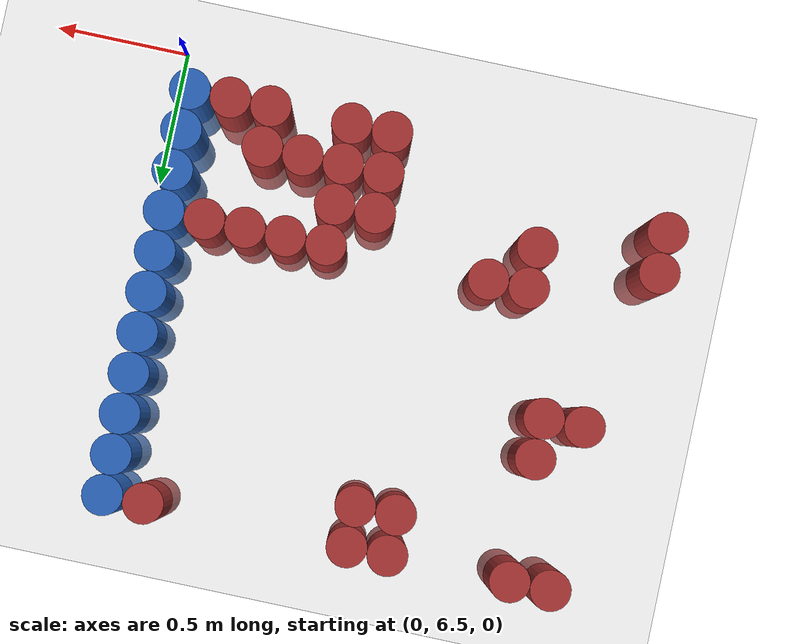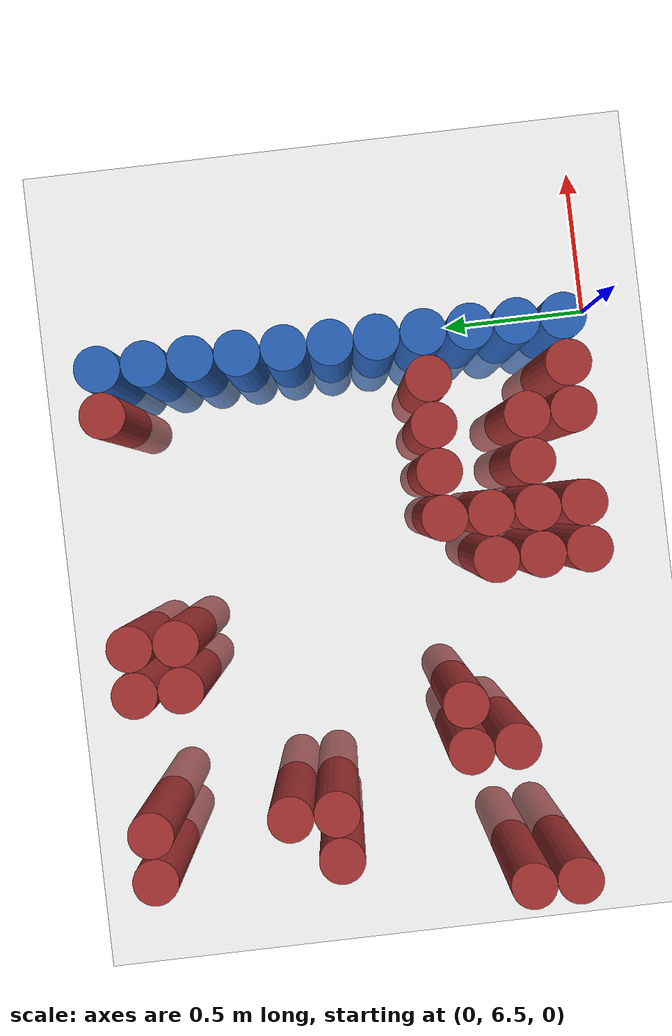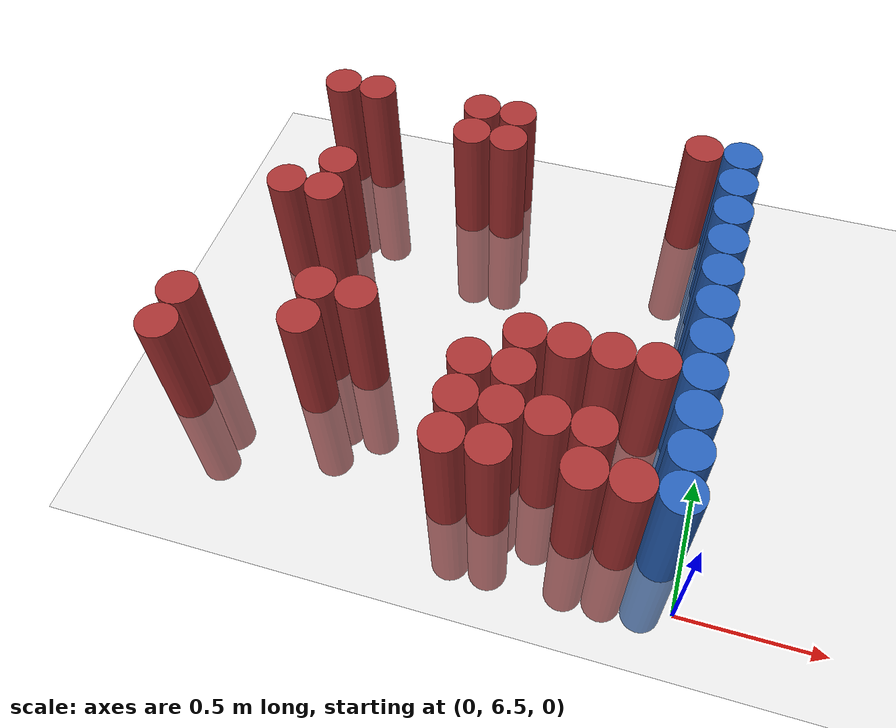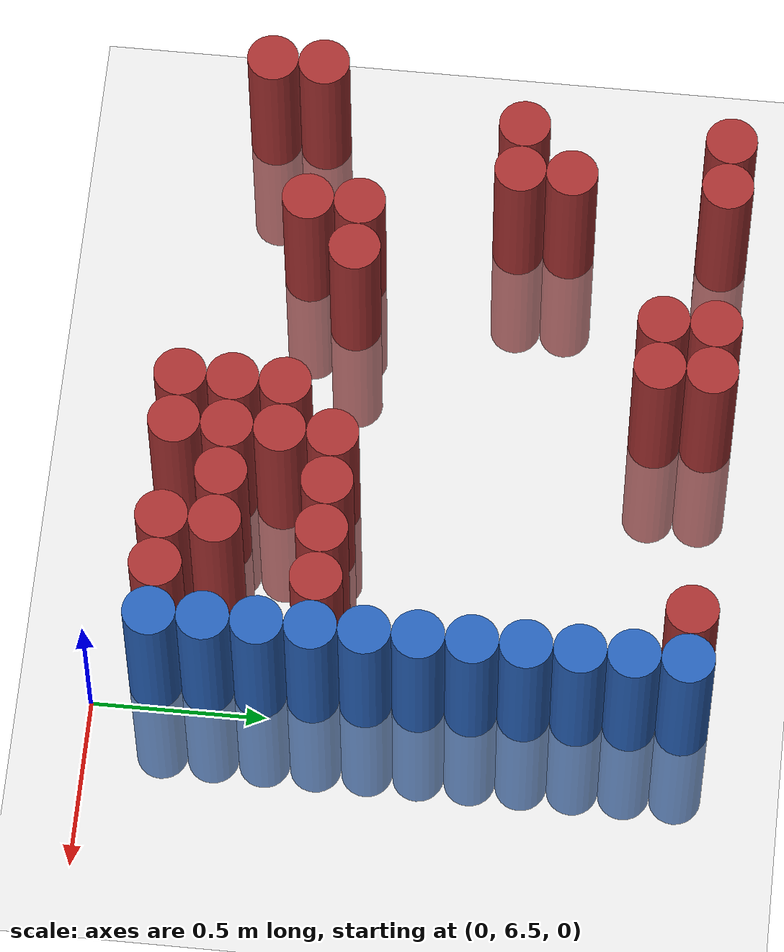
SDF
<sdf version="1.6">
 <world name="default">
  <model name="ground_plane">
   <static>1</static>
   <link name="link">
    <collision name="collision">
     <geometry><plane><normal>0 0 1</normal><size>100 100</size></plane></geometry>
     <surface><friction><ode><mu>100</mu><mu2>50</mu2></ode></friction></surface>
    </collision>
    <visual name="visual">
     <cast_shadows>0</cast_shadows>
     <geometry><plane><normal>0 0 1</normal><size>100 100</size></plane></geometry>
     <material>
      <script><uri>file://media/materials/scripts/gazebo.material</uri><name>Gazebo/Grey</name></script>
     </material>
    </visual>
   </link>
  </model>
  <model name="unit_cylinder_209">
   <static>1</static>
   <pose>-1.875000 6.825000 0.000000 0.000000 0.000000 0.000000</pose>
   <link name="link">
    <inertial>
     <mass>1</mass>
     <inertia><ixx>0.145833</ixx><ixy>0</ixy><ixz>0</ixz><iyy>0.145833</iyy><iyz>0</iyz><izz>0.125</izz></inertia>
    </inertial>
    <collision name="collision">
     <geometry><cylinder><radius>0.075000</radius><length>1</length></cylinder></geometry>
    </collision>
    <visual name="visual">
     <geometry><cylinder><radius>0.075000</radius><length>1</length></cylinder></geometry>
     <material>
      <ambient>0.648000 0.192000 0.192000 1</ambient>
      <diffuse>0.648000 0.192000 0.192000 1</diffuse>
     </material>
     <material>
      <script><name>Gazebo/Grey</name><uri>file://media/materials/scripts/gazebo.material</uri></script>
     </material>
    </visual>
    <sensor name="sensor_contact" type="contact"><contact><collision>collision</collision></contact></sensor>
   </link>
   <plugin filename="gz-sim-touchplugin-system" name="gz::sim::systems::TouchPlugin">
    <target>robot</target>
    <namespace>robot</namespace>
    <time>0.001</time>
    <enabled>true</enabled>
   </plugin>
  </model>
  <model name="unit_cylinder_210">
   <static>1</static>
   <pose>-1.875000 6.975000 0.000000 0.000000 0.000000 0.000000</pose>
   <link name="link">
    <inertial>
     <mass>1</mass>
     <inertia><ixx>0.145833</ixx><ixy>0</ixy><ixz>0</ixz><iyy>0.145833</iyy><iyz>0</iyz><izz>0.125</izz></inertia>
    </inertial>
    <collision name="collision">
     <geometry><cylinder><radius>0.075000</radius><length>1</length></cylinder></geometry>
    </collision>
    <visual name="visual">
     <geometry><cylinder><radius>0.075000</radius><length>1</length></cylinder></geometry>
     <material>
      <ambient>0.648000 0.192000 0.192000 1</ambient>
      <diffuse>0.648000 0.192000 0.192000 1</diffuse>
     </material>
     <material>
      <script><name>Gazebo/Grey</name><uri>file://media/materials/scripts/gazebo.material</uri></script>
     </material>
    </visual>
    <sensor name="sensor_contact" type="contact"><contact><collision>collision</collision></contact></sensor>
   </link>
   <plugin filename="gz-sim-touchplugin-system" name="gz::sim::systems::TouchPlugin">
    <target>robot</target>
    <namespace>robot</namespace>
    <time>0.001</time>
    <enabled>true</enabled>
   </plugin>
  </model>
  <model name="unit_cylinder_215">
   <static>1</static>
   <pose>-1.725000 7.575000 0.000000 0.000000 0.000000 0.000000</pose>
   <link name="link">
    <inertial>
     <mass>1</mass>
     <inertia><ixx>0.145833</ixx><ixy>0</ixy><ixz>0</ixz><iyy>0.145833</iyy><iyz>0</iyz><izz>0.125</izz></inertia>
    </inertial>
    <collision name="collision">
     <geometry><cylinder><radius>0.075000</radius><length>1</length></cylinder></geometry>
    </collision>
    <visual name="visual">
     <geometry><cylinder><radius>0.075000</radius><length>1</length></cylinder></geometry>
     <material>
      <ambient>0.648000 0.192000 0.192000 1</ambient>
      <diffuse>0.648000 0.192000 0.192000 1</diffuse>
     </material>
     <material>
      <script><name>Gazebo/Grey</name><uri>file://media/materials/scripts/gazebo.material</uri></script>
     </material>
    </visual>
    <sensor name="sensor_contact" type="contact"><contact><collision>collision</collision></contact></sensor>
   </link>
   <plugin filename="gz-sim-touchplugin-system" name="gz::sim::systems::TouchPlugin">
    <target>robot</target>
    <namespace>robot</namespace>
    <time>0.001</time>
    <enabled>true</enabled>
   </plugin>
  </model>
  <model name="unit_cylinder_216">
   <static>1</static>
   <pose>-1.725000 8.175000 0.000000 0.000000 0.000000 0.000000</pose>
   <link name="link">
    <inertial>
     <mass>1</mass>
     <inertia><ixx>0.145833</ixx><ixy>0</ixy><ixz>0</ixz><iyy>0.145833</iyy><iyz>0</iyz><izz>0.125</izz></inertia>
    </inertial>
    <collision name="collision">
     <geometry><cylinder><radius>0.075000</radius><length>1</length></cylinder></geometry>
    </collision>
    <visual name="visual">
     <geometry><cylinder><radius>0.075000</radius><length>1</length></cylinder></geometry>
     <material>
      <ambient>0.648000 0.192000 0.192000 1</ambient>
      <diffuse>0.648000 0.192000 0.192000 1</diffuse>
     </material>
     <material>
      <script><name>Gazebo/Grey</name><uri>file://media/materials/scripts/gazebo.material</uri></script>
     </material>
    </visual>
    <sensor name="sensor_contact" type="contact"><contact><collision>collision</collision></contact></sensor>
   </link>
   <plugin filename="gz-sim-touchplugin-system" name="gz::sim::systems::TouchPlugin">
    <target>robot</target>
    <namespace>robot</namespace>
    <time>0.001</time>
    <enabled>true</enabled>
   </plugin>
  </model>
  <model name="unit_cylinder_221">
   <static>1</static>
   <pose>-1.575000 7.575000 0.000000 0.000000 0.000000 0.000000</pose>
   <link name="link">
    <inertial>
     <mass>1</mass>
     <inertia><ixx>0.145833</ixx><ixy>0</ixy><ixz>0</ixz><iyy>0.145833</iyy><iyz>0</iyz><izz>0.125</izz></inertia>
    </inertial>
    <collision name="collision">
     <geometry><cylinder><radius>0.075000</radius><length>1</length></cylinder></geometry>
    </collision>
    <visual name="visual">
     <geometry><cylinder><radius>0.075000</radius><length>1</length></cylinder></geometry>
     <material>
      <ambient>0.648000 0.192000 0.192000 1</ambient>
      <diffuse>0.648000 0.192000 0.192000 1</diffuse>
     </material>
     <material>
      <script><name>Gazebo/Grey</name><uri>file://media/materials/scripts/gazebo.material</uri></script>
     </material>
    </visual>
    <sensor name="sensor_contact" type="contact"><contact><collision>collision</collision></contact></sensor>
   </link>
   <plugin filename="gz-sim-touchplugin-system" name="gz::sim::systems::TouchPlugin">
    <target>robot</target>
    <namespace>robot</namespace>
    <time>0.001</time>
    <enabled>true</enabled>
   </plugin>
  </model>
  <model name="unit_cylinder_222">
   <static>1</static>
   <pose>-1.575000 7.725000 0.000000 0.000000 0.000000 0.000000</pose>
   <link name="link">
    <inertial>
     <mass>1</mass>
     <inertia><ixx>0.145833</ixx><ixy>0</ixy><ixz>0</ixz><iyy>0.145833</iyy><iyz>0</iyz><izz>0.125</izz></inertia>
    </inertial>
    <collision name="collision">
     <geometry><cylinder><radius>0.075000</radius><length>1</length></cylinder></geometry>
    </collision>
    <visual name="visual">
     <geometry><cylinder><radius>0.075000</radius><length>1</length></cylinder></geometry>
     <material>
      <ambient>0.648000 0.192000 0.192000 1</ambient>
      <diffuse>0.648000 0.192000 0.192000 1</diffuse>
     </material>
     <material>
      <script><name>Gazebo/Grey</name><uri>file://media/materials/scripts/gazebo.material</uri></script>
     </material>
    </visual>
    <sensor name="sensor_contact" type="contact"><contact><collision>collision</collision></contact></sensor>
   </link>
   <plugin filename="gz-sim-touchplugin-system" name="gz::sim::systems::TouchPlugin">
    <target>robot</target>
    <namespace>robot</namespace>
    <time>0.001</time>
    <enabled>true</enabled>
   </plugin>
  </model>
  <model name="unit_cylinder_223">
   <static>1</static>
   <pose>-1.575000 8.175000 0.000000 0.000000 0.000000 0.000000</pose>
   <link name="link">
    <inertial>
     <mass>1</mass>
     <inertia><ixx>0.145833</ixx><ixy>0</ixy><ixz>0</ixz><iyy>0.145833</iyy><iyz>0</iyz><izz>0.125</izz></inertia>
    </inertial>
    <collision name="collision">
     <geometry><cylinder><radius>0.075000</radius><length>1</length></cylinder></geometry>
    </collision>
    <visual name="visual">
     <geometry><cylinder><radius>0.075000</radius><length>1</length></cylinder></geometry>
     <material>
      <ambient>0.648000 0.192000 0.192000 1</ambient>
      <diffuse>0.648000 0.192000 0.192000 1</diffuse>
     </material>
     <material>
      <script><name>Gazebo/Grey</name><uri>file://media/materials/scripts/gazebo.material</uri></script>
     </material>
    </visual>
    <sensor name="sensor_contact" type="contact"><contact><collision>collision</collision></contact></sensor>
   </link>
   <plugin filename="gz-sim-touchplugin-system" name="gz::sim::systems::TouchPlugin">
    <target>robot</target>
    <namespace>robot</namespace>
    <time>0.001</time>
    <enabled>true</enabled>
   </plugin>
  </model>
  <model name="unit_cylinder_228">
   <static>1</static>
   <pose>-1.425000 6.975000 0.000000 0.000000 0.000000 0.000000</pose>
   <link name="link">
    <inertial>
     <mass>1</mass>
     <inertia><ixx>0.145833</ixx><ixy>0</ixy><ixz>0</ixz><iyy>0.145833</iyy><iyz>0</iyz><izz>0.125</izz></inertia>
    </inertial>
    <collision name="collision">
     <geometry><cylinder><radius>0.075000</radius><length>1</length></cylinder></geometry>
    </collision>
    <visual name="visual">
     <geometry><cylinder><radius>0.075000</radius><length>1</length></cylinder></geometry>
     <material>
      <ambient>0.648000 0.192000 0.192000 1</ambient>
      <diffuse>0.648000 0.192000 0.192000 1</diffuse>
     </material>
     <material>
      <script><name>Gazebo/Grey</name><uri>file://media/materials/scripts/gazebo.material</uri></script>
     </material>
    </visual>
    <sensor name="sensor_contact" type="contact"><contact><collision>collision</collision></contact></sensor>
   </link>
   <plugin filename="gz-sim-touchplugin-system" name="gz::sim::systems::TouchPlugin">
    <target>robot</target>
    <namespace>robot</namespace>
    <time>0.001</time>
    <enabled>true</enabled>
   </plugin>
  </model>
  <model name="unit_cylinder_229">
   <static>1</static>
   <pose>-1.425000 7.125000 0.000000 0.000000 0.000000 0.000000</pose>
   <link name="link">
    <inertial>
     <mass>1</mass>
     <inertia><ixx>0.145833</ixx><ixy>0</ixy><ixz>0</ixz><iyy>0.145833</iyy><iyz>0</iyz><izz>0.125</izz></inertia>
    </inertial>
    <collision name="collision">
     <geometry><cylinder><radius>0.075000</radius><length>1</length></cylinder></geometry>
    </collision>
    <visual name="visual">
     <geometry><cylinder><radius>0.075000</radius><length>1</length></cylinder></geometry>
     <material>
      <ambient>0.648000 0.192000 0.192000 1</ambient>
      <diffuse>0.648000 0.192000 0.192000 1</diffuse>
     </material>
     <material>
      <script><name>Gazebo/Grey</name><uri>file://media/materials/scripts/gazebo.material</uri></script>
     </material>
    </visual>
    <sensor name="sensor_contact" type="contact"><contact><collision>collision</collision></contact></sensor>
   </link>
   <plugin filename="gz-sim-touchplugin-system" name="gz::sim::systems::TouchPlugin">
    <target>robot</target>
    <namespace>robot</namespace>
    <time>0.001</time>
    <enabled>true</enabled>
   </plugin>
  </model>
  <model name="unit_cylinder_232">
   <static>1</static>
   <pose>-1.275000 7.125000 0.000000 0.000000 0.000000 0.000000</pose>
   <link name="link">
    <inertial>
     <mass>1</mass>
     <inertia><ixx>0.145833</ixx><ixy>0</ixy><ixz>0</ixz><iyy>0.145833</iyy><iyz>0</iyz><izz>0.125</izz></inertia>
    </inertial>
    <collision name="collision">
     <geometry><cylinder><radius>0.075000</radius><length>1</length></cylinder></geometry>
    </collision>
    <visual name="visual">
     <geometry><cylinder><radius>0.075000</radius><length>1</length></cylinder></geometry>
     <material>
      <ambient>0.648000 0.192000 0.192000 1</ambient>
      <diffuse>0.648000 0.192000 0.192000 1</diffuse>
     </material>
     <material>
      <script><name>Gazebo/Grey</name><uri>file://media/materials/scripts/gazebo.material</uri></script>
     </material>
    </visual>
    <sensor name="sensor_contact" type="contact"><contact><collision>collision</collision></contact></sensor>
   </link>
   <plugin filename="gz-sim-touchplugin-system" name="gz::sim::systems::TouchPlugin">
    <target>robot</target>
    <namespace>robot</namespace>
    <time>0.001</time>
    <enabled>true</enabled>
   </plugin>
  </model>
  <model name="unit_cylinder_234">
   <static>1</static>
   <pose>-1.125000 8.025000 0.000000 0.000000 0.000000 0.000000</pose>
   <link name="link">
    <inertial>
     <mass>1</mass>
     <inertia><ixx>0.145833</ixx><ixy>0</ixy><ixz>0</ixz><iyy>0.145833</iyy><iyz>0</iyz><izz>0.125</izz></inertia>
    </inertial>
    <collision name="collision">
     <geometry><cylinder><radius>0.075000</radius><length>1</length></cylinder></geometry>
    </collision>
    <visual name="visual">
     <geometry><cylinder><radius>0.075000</radius><length>1</length></cylinder></geometry>
     <material>
      <ambient>0.648000 0.192000 0.192000 1</ambient>
      <diffuse>0.648000 0.192000 0.192000 1</diffuse>
     </material>
     <material>
      <script><name>Gazebo/Grey</name><uri>file://media/materials/scripts/gazebo.material</uri></script>
     </material>
    </visual>
    <sensor name="sensor_contact" type="contact"><contact><collision>collision</collision></contact></sensor>
   </link>
   <plugin filename="gz-sim-touchplugin-system" name="gz::sim::systems::TouchPlugin">
    <target>robot</target>
    <namespace>robot</namespace>
    <time>0.001</time>
    <enabled>true</enabled>
   </plugin>
  </model>
  <model name="unit_cylinder_235">
   <static>1</static>
   <pose>-1.125000 8.175000 0.000000 0.000000 0.000000 0.000000</pose>
   <link name="link">
    <inertial>
     <mass>1</mass>
     <inertia><ixx>0.145833</ixx><ixy>0</ixy><ixz>0</ixz><iyy>0.145833</iyy><iyz>0</iyz><izz>0.125</izz></inertia>
    </inertial>
    <collision name="collision">
     <geometry><cylinder><radius>0.075000</radius><length>1</length></cylinder></geometry>
    </collision>
    <visual name="visual">
     <geometry><cylinder><radius>0.075000</radius><length>1</length></cylinder></geometry>
     <material>
      <ambient>0.648000 0.192000 0.192000 1</ambient>
      <diffuse>0.648000 0.192000 0.192000 1</diffuse>
     </material>
     <material>
      <script><name>Gazebo/Grey</name><uri>file://media/materials/scripts/gazebo.material</uri></script>
     </material>
    </visual>
    <sensor name="sensor_contact" type="contact"><contact><collision>collision</collision></contact></sensor>
   </link>
   <plugin filename="gz-sim-touchplugin-system" name="gz::sim::systems::TouchPlugin">
    <target>robot</target>
    <namespace>robot</namespace>
    <time>0.001</time>
    <enabled>true</enabled>
   </plugin>
  </model>
  <model name="unit_cylinder_240">
   <static>1</static>
   <pose>-0.975000 8.025000 0.000000 0.000000 0.000000 0.000000</pose>
   <link name="link">
    <inertial>
     <mass>1</mass>
     <inertia><ixx>0.145833</ixx><ixy>0</ixy><ixz>0</ixz><iyy>0.145833</iyy><iyz>0</iyz><izz>0.125</izz></inertia>
    </inertial>
    <collision name="collision">
     <geometry><cylinder><radius>0.075000</radius><length>1</length></cylinder></geometry>
    </collision>
    <visual name="visual">
     <geometry><cylinder><radius>0.075000</radius><length>1</length></cylinder></geometry>
     <material>
      <ambient>0.648000 0.192000 0.192000 1</ambient>
      <diffuse>0.648000 0.192000 0.192000 1</diffuse>
     </material>
     <material>
      <script><name>Gazebo/Grey</name><uri>file://media/materials/scripts/gazebo.material</uri></script>
     </material>
    </visual>
    <sensor name="sensor_contact" type="contact"><contact><collision>collision</collision></contact></sensor>
   </link>
   <plugin filename="gz-sim-touchplugin-system" name="gz::sim::systems::TouchPlugin">
    <target>robot</target>
    <namespace>robot</namespace>
    <time>0.001</time>
    <enabled>true</enabled>
   </plugin>
  </model>
  <model name="unit_cylinder_241">
   <static>1</static>
   <pose>-0.975000 8.175000 0.000000 0.000000 0.000000 0.000000</pose>
   <link name="link">
    <inertial>
     <mass>1</mass>
     <inertia><ixx>0.145833</ixx><ixy>0</ixy><ixz>0</ixz><iyy>0.145833</iyy><iyz>0</iyz><izz>0.125</izz></inertia>
    </inertial>
    <collision name="collision">
     <geometry><cylinder><radius>0.075000</radius><length>1</length></cylinder></geometry>
    </collision>
    <visual name="visual">
     <geometry><cylinder><radius>0.075000</radius><length>1</length></cylinder></geometry>
     <material>
      <ambient>0.648000 0.192000 0.192000 1</ambient>
      <diffuse>0.648000 0.192000 0.192000 1</diffuse>
     </material>
     <material>
      <script><name>Gazebo/Grey</name><uri>file://media/materials/scripts/gazebo.material</uri></script>
     </material>
    </visual>
    <sensor name="sensor_contact" type="contact"><contact><collision>collision</collision></contact></sensor>
   </link>
   <plugin filename="gz-sim-touchplugin-system" name="gz::sim::systems::TouchPlugin">
    <target>robot</target>
    <namespace>robot</namespace>
    <time>0.001</time>
    <enabled>true</enabled>
   </plugin>
  </model>
  <model name="unit_cylinder_245">
   <static>1</static>
   <pose>-0.825000 6.675000 0.000000 0.000000 0.000000 0.000000</pose>
   <link name="link">
    <inertial>
     <mass>1</mass>
     <inertia><ixx>0.145833</ixx><ixy>0</ixy><ixz>0</ixz><iyy>0.145833</iyy><iyz>0</iyz><izz>0.125</izz></inertia>
    </inertial>
    <collision name="collision">
     <geometry><cylinder><radius>0.075000</radius><length>1</length></cylinder></geometry>
    </collision>
    <visual name="visual">
     <geometry><cylinder><radius>0.075000</radius><length>1</length></cylinder></geometry>
     <material>
      <ambient>0.648000 0.192000 0.192000 1</ambient>
      <diffuse>0.648000 0.192000 0.192000 1</diffuse>
     </material>
     <material>
      <script><name>Gazebo/Grey</name><uri>file://media/materials/scripts/gazebo.material</uri></script>
     </material>
    </visual>
    <sensor name="sensor_contact" type="contact"><contact><collision>collision</collision></contact></sensor>
   </link>
   <plugin filename="gz-sim-touchplugin-system" name="gz::sim::systems::TouchPlugin">
    <target>robot</target>
    <namespace>robot</namespace>
    <time>0.001</time>
    <enabled>true</enabled>
   </plugin>
  </model>
  <model name="unit_cylinder_246">
   <static>1</static>
   <pose>-0.825000 6.825000 0.000000 0.000000 0.000000 0.000000</pose>
   <link name="link">
    <inertial>
     <mass>1</mass>
     <inertia><ixx>0.145833</ixx><ixy>0</ixy><ixz>0</ixz><iyy>0.145833</iyy><iyz>0</iyz><izz>0.125</izz></inertia>
    </inertial>
    <collision name="collision">
     <geometry><cylinder><radius>0.075000</radius><length>1</length></cylinder></geometry>
    </collision>
    <visual name="visual">
     <geometry><cylinder><radius>0.075000</radius><length>1</length></cylinder></geometry>
     <material>
      <ambient>0.648000 0.192000 0.192000 1</ambient>
      <diffuse>0.648000 0.192000 0.192000 1</diffuse>
     </material>
     <material>
      <script><name>Gazebo/Grey</name><uri>file://media/materials/scripts/gazebo.material</uri></script>
     </material>
    </visual>
    <sensor name="sensor_contact" type="contact"><contact><collision>collision</collision></contact></sensor>
   </link>
   <plugin filename="gz-sim-touchplugin-system" name="gz::sim::systems::TouchPlugin">
    <target>robot</target>
    <namespace>robot</namespace>
    <time>0.001</time>
    <enabled>true</enabled>
   </plugin>
  </model>
  <model name="unit_cylinder_247">
   <static>1</static>
   <pose>-0.825000 6.975000 0.000000 0.000000 0.000000 0.000000</pose>
   <link name="link">
    <inertial>
     <mass>1</mass>
     <inertia><ixx>0.145833</ixx><ixy>0</ixy><ixz>0</ixz><iyy>0.145833</iyy><iyz>0</iyz><izz>0.125</izz></inertia>
    </inertial>
    <collision name="collision">
     <geometry><cylinder><radius>0.075000</radius><length>1</length></cylinder></geometry>
    </collision>
    <visual name="visual">
     <geometry><cylinder><radius>0.075000</radius><length>1</length></cylinder></geometry>
     <material>
      <ambient>0.648000 0.192000 0.192000 1</ambient>
      <diffuse>0.648000 0.192000 0.192000 1</diffuse>
     </material>
     <material>
      <script><name>Gazebo/Grey</name><uri>file://media/materials/scripts/gazebo.material</uri></script>
     </material>
    </visual>
    <sensor name="sensor_contact" type="contact"><contact><collision>collision</collision></contact></sensor>
   </link>
   <plugin filename="gz-sim-touchplugin-system" name="gz::sim::systems::TouchPlugin">
    <target>robot</target>
    <namespace>robot</namespace>
    <time>0.001</time>
    <enabled>true</enabled>
   </plugin>
  </model>
  <model name="unit_cylinder_252">
   <static>1</static>
   <pose>-0.675000 6.675000 0.000000 0.000000 0.000000 0.000000</pose>
   <link name="link">
    <inertial>
     <mass>1</mass>
     <inertia><ixx>0.145833</ixx><ixy>0</ixy><ixz>0</ixz><iyy>0.145833</iyy><iyz>0</iyz><izz>0.125</izz></inertia>
    </inertial>
    <collision name="collision">
     <geometry><cylinder><radius>0.075000</radius><length>1</length></cylinder></geometry>
    </collision>
    <visual name="visual">
     <geometry><cylinder><radius>0.075000</radius><length>1</length></cylinder></geometry>
     <material>
      <ambient>0.648000 0.192000 0.192000 1</ambient>
      <diffuse>0.648000 0.192000 0.192000 1</diffuse>
     </material>
     <material>
      <script><name>Gazebo/Grey</name><uri>file://media/materials/scripts/gazebo.material</uri></script>
     </material>
    </visual>
    <sensor name="sensor_contact" type="contact"><contact><collision>collision</collision></contact></sensor>
   </link>
   <plugin filename="gz-sim-touchplugin-system" name="gz::sim::systems::TouchPlugin">
    <target>robot</target>
    <namespace>robot</namespace>
    <time>0.001</time>
    <enabled>true</enabled>
   </plugin>
  </model>
  <model name="unit_cylinder_253">
   <static>1</static>
   <pose>-0.675000 6.825000 0.000000 0.000000 0.000000 0.000000</pose>
   <link name="link">
    <inertial>
     <mass>1</mass>
     <inertia><ixx>0.145833</ixx><ixy>0</ixy><ixz>0</ixz><iyy>0.145833</iyy><iyz>0</iyz><izz>0.125</izz></inertia>
    </inertial>
    <collision name="collision">
     <geometry><cylinder><radius>0.075000</radius><length>1</length></cylinder></geometry>
    </collision>
    <visual name="visual">
     <geometry><cylinder><radius>0.075000</radius><length>1</length></cylinder></geometry>
     <material>
      <ambient>0.648000 0.192000 0.192000 1</ambient>
      <diffuse>0.648000 0.192000 0.192000 1</diffuse>
     </material>
     <material>
      <script><name>Gazebo/Grey</name><uri>file://media/materials/scripts/gazebo.material</uri></script>
     </material>
    </visual>
    <sensor name="sensor_contact" type="contact"><contact><collision>collision</collision></contact></sensor>
   </link>
   <plugin filename="gz-sim-touchplugin-system" name="gz::sim::systems::TouchPlugin">
    <target>robot</target>
    <namespace>robot</namespace>
    <time>0.001</time>
    <enabled>true</enabled>
   </plugin>
  </model>
  <model name="unit_cylinder_254">
   <static>1</static>
   <pose>-0.675000 6.975000 0.000000 0.000000 0.000000 0.000000</pose>
   <link name="link">
    <inertial>
     <mass>1</mass>
     <inertia><ixx>0.145833</ixx><ixy>0</ixy><ixz>0</ixz><iyy>0.145833</iyy><iyz>0</iyz><izz>0.125</izz></inertia>
    </inertial>
    <collision name="collision">
     <geometry><cylinder><radius>0.075000</radius><length>1</length></cylinder></geometry>
    </collision>
    <visual name="visual">
     <geometry><cylinder><radius>0.075000</radius><length>1</length></cylinder></geometry>
     <material>
      <ambient>0.648000 0.192000 0.192000 1</ambient>
      <diffuse>0.648000 0.192000 0.192000 1</diffuse>
     </material>
     <material>
      <script><name>Gazebo/Grey</name><uri>file://media/materials/scripts/gazebo.material</uri></script>
     </material>
    </visual>
    <sensor name="sensor_contact" type="contact"><contact><collision>collision</collision></contact></sensor>
   </link>
   <plugin filename="gz-sim-touchplugin-system" name="gz::sim::systems::TouchPlugin">
    <target>robot</target>
    <namespace>robot</namespace>
    <time>0.001</time>
    <enabled>true</enabled>
   </plugin>
  </model>
  <model name="unit_cylinder_255">
   <static>1</static>
   <pose>-0.675000 7.125000 0.000000 0.000000 0.000000 0.000000</pose>
   <link name="link">
    <inertial>
     <mass>1</mass>
     <inertia><ixx>0.145833</ixx><ixy>0</ixy><ixz>0</ixz><iyy>0.145833</iyy><iyz>0</iyz><izz>0.125</izz></inertia>
    </inertial>
    <collision name="collision">
     <geometry><cylinder><radius>0.075000</radius><length>1</length></cylinder></geometry>
    </collision>
    <visual name="visual">
     <geometry><cylinder><radius>0.075000</radius><length>1</length></cylinder></geometry>
     <material>
      <ambient>0.648000 0.192000 0.192000 1</ambient>
      <diffuse>0.648000 0.192000 0.192000 1</diffuse>
     </material>
     <material>
      <script><name>Gazebo/Grey</name><uri>file://media/materials/scripts/gazebo.material</uri></script>
     </material>
    </visual>
    <sensor name="sensor_contact" type="contact"><contact><collision>collision</collision></contact></sensor>
   </link>
   <plugin filename="gz-sim-touchplugin-system" name="gz::sim::systems::TouchPlugin">
    <target>robot</target>
    <namespace>robot</namespace>
    <time>0.001</time>
    <enabled>true</enabled>
   </plugin>
  </model>
  <model name="unit_cylinder_262">
   <static>1</static>
   <pose>-0.525000 6.825000 0.000000 0.000000 0.000000 0.000000</pose>
   <link name="link">
    <inertial>
     <mass>1</mass>
     <inertia><ixx>0.145833</ixx><ixy>0</ixy><ixz>0</ixz><iyy>0.145833</iyy><iyz>0</iyz><izz>0.125</izz></inertia>
    </inertial>
    <collision name="collision">
     <geometry><cylinder><radius>0.075000</radius><length>1</length></cylinder></geometry>
    </collision>
    <visual name="visual">
     <geometry><cylinder><radius>0.075000</radius><length>1</length></cylinder></geometry>
     <material>
      <ambient>0.648000 0.192000 0.192000 1</ambient>
      <diffuse>0.648000 0.192000 0.192000 1</diffuse>
     </material>
     <material>
      <script><name>Gazebo/Grey</name><uri>file://media/materials/scripts/gazebo.material</uri></script>
     </material>
    </visual>
    <sensor name="sensor_contact" type="contact"><contact><collision>collision</collision></contact></sensor>
   </link>
   <plugin filename="gz-sim-touchplugin-system" name="gz::sim::systems::TouchPlugin">
    <target>robot</target>
    <namespace>robot</namespace>
    <time>0.001</time>
    <enabled>true</enabled>
   </plugin>
  </model>
  <model name="unit_cylinder_263">
   <static>1</static>
   <pose>-0.525000 7.125000 0.000000 0.000000 0.000000 0.000000</pose>
   <link name="link">
    <inertial>
     <mass>1</mass>
     <inertia><ixx>0.145833</ixx><ixy>0</ixy><ixz>0</ixz><iyy>0.145833</iyy><iyz>0</iyz><izz>0.125</izz></inertia>
    </inertial>
    <collision name="collision">
     <geometry><cylinder><radius>0.075000</radius><length>1</length></cylinder></geometry>
    </collision>
    <visual name="visual">
     <geometry><cylinder><radius>0.075000</radius><length>1</length></cylinder></geometry>
     <material>
      <ambient>0.648000 0.192000 0.192000 1</ambient>
      <diffuse>0.648000 0.192000 0.192000 1</diffuse>
     </material>
     <material>
      <script><name>Gazebo/Grey</name><uri>file://media/materials/scripts/gazebo.material</uri></script>
     </material>
    </visual>
    <sensor name="sensor_contact" type="contact"><contact><collision>collision</collision></contact></sensor>
   </link>
   <plugin filename="gz-sim-touchplugin-system" name="gz::sim::systems::TouchPlugin">
    <target>robot</target>
    <namespace>robot</namespace>
    <time>0.001</time>
    <enabled>true</enabled>
   </plugin>
  </model>
  <model name="unit_cylinder_272">
   <static>1</static>
   <pose>-0.375000 6.675000 0.000000 0.000000 0.000000 0.000000</pose>
   <link name="link">
    <inertial>
     <mass>1</mass>
     <inertia><ixx>0.145833</ixx><ixy>0</ixy><ixz>0</ixz><iyy>0.145833</iyy><iyz>0</iyz><izz>0.125</izz></inertia>
    </inertial>
    <collision name="collision">
     <geometry><cylinder><radius>0.075000</radius><length>1</length></cylinder></geometry>
    </collision>
    <visual name="visual">
     <geometry><cylinder><radius>0.075000</radius><length>1</length></cylinder></geometry>
     <material>
      <ambient>0.648000 0.192000 0.192000 1</ambient>
      <diffuse>0.648000 0.192000 0.192000 1</diffuse>
     </material>
     <material>
      <script><name>Gazebo/Grey</name><uri>file://media/materials/scripts/gazebo.material</uri></script>
     </material>
    </visual>
    <sensor name="sensor_contact" type="contact"><contact><collision>collision</collision></contact></sensor>
   </link>
   <plugin filename="gz-sim-touchplugin-system" name="gz::sim::systems::TouchPlugin">
    <target>robot</target>
    <namespace>robot</namespace>
    <time>0.001</time>
    <enabled>true</enabled>
   </plugin>
  </model>
  <model name="unit_cylinder_273">
   <static>1</static>
   <pose>-0.375000 6.825000 0.000000 0.000000 0.000000 0.000000</pose>
   <link name="link">
    <inertial>
     <mass>1</mass>
     <inertia><ixx>0.145833</ixx><ixy>0</ixy><ixz>0</ixz><iyy>0.145833</iyy><iyz>0</iyz><izz>0.125</izz></inertia>
    </inertial>
    <collision name="collision">
     <geometry><cylinder><radius>0.075000</radius><length>1</length></cylinder></geometry>
    </collision>
    <visual name="visual">
     <geometry><cylinder><radius>0.075000</radius><length>1</length></cylinder></geometry>
     <material>
      <ambient>0.648000 0.192000 0.192000 1</ambient>
      <diffuse>0.648000 0.192000 0.192000 1</diffuse>
     </material>
     <material>
      <script><name>Gazebo/Grey</name><uri>file://media/materials/scripts/gazebo.material</uri></script>
     </material>
    </visual>
    <sensor name="sensor_contact" type="contact"><contact><collision>collision</collision></contact></sensor>
   </link>
   <plugin filename="gz-sim-touchplugin-system" name="gz::sim::systems::TouchPlugin">
    <target>robot</target>
    <namespace>robot</namespace>
    <time>0.001</time>
    <enabled>true</enabled>
   </plugin>
  </model>
  <model name="unit_cylinder_274">
   <static>1</static>
   <pose>-0.375000 7.125000 0.000000 0.000000 0.000000 0.000000</pose>
   <link name="link">
    <inertial>
     <mass>1</mass>
     <inertia><ixx>0.145833</ixx><ixy>0</ixy><ixz>0</ixz><iyy>0.145833</iyy><iyz>0</iyz><izz>0.125</izz></inertia>
    </inertial>
    <collision name="collision">
     <geometry><cylinder><radius>0.075000</radius><length>1</length></cylinder></geometry>
    </collision>
    <visual name="visual">
     <geometry><cylinder><radius>0.075000</radius><length>1</length></cylinder></geometry>
     <material>
      <ambient>0.648000 0.192000 0.192000 1</ambient>
      <diffuse>0.648000 0.192000 0.192000 1</diffuse>
     </material>
     <material>
      <script><name>Gazebo/Grey</name><uri>file://media/materials/scripts/gazebo.material</uri></script>
     </material>
    </visual>
    <sensor name="sensor_contact" type="contact"><contact><collision>collision</collision></contact></sensor>
   </link>
   <plugin filename="gz-sim-touchplugin-system" name="gz::sim::systems::TouchPlugin">
    <target>robot</target>
    <namespace>robot</namespace>
    <time>0.001</time>
    <enabled>true</enabled>
   </plugin>
  </model>
  <model name="unit_cylinder_285">
   <static>1</static>
   <pose>-0.225000 6.675000 0.000000 0.000000 0.000000 0.000000</pose>
   <link name="link">
    <inertial>
     <mass>1</mass>
     <inertia><ixx>0.145833</ixx><ixy>0</ixy><ixz>0</ixz><iyy>0.145833</iyy><iyz>0</iyz><izz>0.125</izz></inertia>
    </inertial>
    <collision name="collision">
     <geometry><cylinder><radius>0.075000</radius><length>1</length></cylinder></geometry>
    </collision>
    <visual name="visual">
     <geometry><cylinder><radius>0.075000</radius><length>1</length></cylinder></geometry>
     <material>
      <ambient>0.648000 0.192000 0.192000 1</ambient>
      <diffuse>0.648000 0.192000 0.192000 1</diffuse>
     </material>
     <material>
      <script><name>Gazebo/Grey</name><uri>file://media/materials/scripts/gazebo.material</uri></script>
     </material>
    </visual>
    <sensor name="sensor_contact" type="contact"><contact><collision>collision</collision></contact></sensor>
   </link>
   <plugin filename="gz-sim-touchplugin-system" name="gz::sim::systems::TouchPlugin">
    <target>robot</target>
    <namespace>robot</namespace>
    <time>0.001</time>
    <enabled>true</enabled>
   </plugin>
  </model>
  <model name="unit_cylinder_286">
   <static>1</static>
   <pose>-0.225000 7.125000 0.000000 0.000000 0.000000 0.000000</pose>
   <link name="link">
    <inertial>
     <mass>1</mass>
     <inertia><ixx>0.145833</ixx><ixy>0</ixy><ixz>0</ixz><iyy>0.145833</iyy><iyz>0</iyz><izz>0.125</izz></inertia>
    </inertial>
    <collision name="collision">
     <geometry><cylinder><radius>0.075000</radius><length>1</length></cylinder></geometry>
    </collision>
    <visual name="visual">
     <geometry><cylinder><radius>0.075000</radius><length>1</length></cylinder></geometry>
     <material>
      <ambient>0.648000 0.192000 0.192000 1</ambient>
      <diffuse>0.648000 0.192000 0.192000 1</diffuse>
     </material>
     <material>
      <script><name>Gazebo/Grey</name><uri>file://media/materials/scripts/gazebo.material</uri></script>
     </material>
    </visual>
    <sensor name="sensor_contact" type="contact"><contact><collision>collision</collision></contact></sensor>
   </link>
   <plugin filename="gz-sim-touchplugin-system" name="gz::sim::systems::TouchPlugin">
    <target>robot</target>
    <namespace>robot</namespace>
    <time>0.001</time>
    <enabled>true</enabled>
   </plugin>
  </model>
  <model name="unit_cylinder_287">
   <static>1</static>
   <pose>-0.225000 8.175000 0.000000 0.000000 0.000000 0.000000</pose>
   <link name="link">
    <inertial>
     <mass>1</mass>
     <inertia><ixx>0.145833</ixx><ixy>0</ixy><ixz>0</ixz><iyy>0.145833</iyy><iyz>0</iyz><izz>0.125</izz></inertia>
    </inertial>
    <collision name="collision">
     <geometry><cylinder><radius>0.075000</radius><length>1</length></cylinder></geometry>
    </collision>
    <visual name="visual">
     <geometry><cylinder><radius>0.075000</radius><length>1</length></cylinder></geometry>
     <material>
      <ambient>0.648000 0.192000 0.192000 1</ambient>
      <diffuse>0.648000 0.192000 0.192000 1</diffuse>
     </material>
     <material>
      <script><name>Gazebo/Grey</name><uri>file://media/materials/scripts/gazebo.material</uri></script>
     </material>
    </visual>
    <sensor name="sensor_contact" type="contact"><contact><collision>collision</collision></contact></sensor>
   </link>
   <plugin filename="gz-sim-touchplugin-system" name="gz::sim::systems::TouchPlugin">
    <target>robot</target>
    <namespace>robot</namespace>
    <time>0.001</time>
    <enabled>true</enabled>
   </plugin>
  </model>
  <model name="unit_cylinder_304">
   <static>1</static>
   <pose>-0.075000 6.675000 0.000000 0.000000 0.000000 0.000000</pose>
   <link name="link">
    <inertial>
     <mass>1</mass>
     <inertia><ixx>0.145833</ixx><ixy>0</ixy><ixz>0</ixz><iyy>0.145833</iyy><iyz>0</iyz><izz>0.125</izz></inertia>
    </inertial>
    <collision name="collision">
     <geometry><cylinder><radius>0.075000</radius><length>1</length></cylinder></geometry>
    </collision>
    <visual name="visual">
     <geometry><cylinder><radius>0.075000</radius><length>1</length></cylinder></geometry>
     <material>
      <ambient>0.152000 0.379000 0.720000 1</ambient>
      <diffuse>0.152000 0.379000 0.720000 1</diffuse>
     </material>
     <material>
      <script><name>Gazebo/Grey</name><uri>file://media/materials/scripts/gazebo.material</uri></script>
     </material>
    </visual>
    <sensor name="sensor_contact" type="contact"><contact><collision>collision</collision></contact></sensor>
   </link>
   <plugin filename="gz-sim-touchplugin-system" name="gz::sim::systems::TouchPlugin">
    <target>robot</target>
    <namespace>robot</namespace>
    <time>0.001</time>
    <enabled>true</enabled>
   </plugin>
  </model>
  <model name="unit_cylinder_305">
   <static>1</static>
   <pose>-0.075000 6.825000 0.000000 0.000000 0.000000 0.000000</pose>
   <link name="link">
    <inertial>
     <mass>1</mass>
     <inertia><ixx>0.145833</ixx><ixy>0</ixy><ixz>0</ixz><iyy>0.145833</iyy><iyz>0</iyz><izz>0.125</izz></inertia>
    </inertial>
    <collision name="collision">
     <geometry><cylinder><radius>0.075000</radius><length>1</length></cylinder></geometry>
    </collision>
    <visual name="visual">
     <geometry><cylinder><radius>0.075000</radius><length>1</length></cylinder></geometry>
     <material>
      <ambient>0.152000 0.379000 0.720000 1</ambient>
      <diffuse>0.152000 0.379000 0.720000 1</diffuse>
     </material>
     <material>
      <script><name>Gazebo/Grey</name><uri>file://media/materials/scripts/gazebo.material</uri></script>
     </material>
    </visual>
    <sensor name="sensor_contact" type="contact"><contact><collision>collision</collision></contact></sensor>
   </link>
   <plugin filename="gz-sim-touchplugin-system" name="gz::sim::systems::TouchPlugin">
    <target>robot</target>
    <namespace>robot</namespace>
    <time>0.001</time>
    <enabled>true</enabled>
   </plugin>
  </model>
  <model name="unit_cylinder_306">
   <static>1</static>
   <pose>-0.075000 6.975000 0.000000 0.000000 0.000000 0.000000</pose>
   <link name="link">
    <inertial>
     <mass>1</mass>
     <inertia><ixx>0.145833</ixx><ixy>0</ixy><ixz>0</ixz><iyy>0.145833</iyy><iyz>0</iyz><izz>0.125</izz></inertia>
    </inertial>
    <collision name="collision">
     <geometry><cylinder><radius>0.075000</radius><length>1</length></cylinder></geometry>
    </collision>
    <visual name="visual">
     <geometry><cylinder><radius>0.075000</radius><length>1</length></cylinder></geometry>
     <material>
      <ambient>0.152000 0.379000 0.720000 1</ambient>
      <diffuse>0.152000 0.379000 0.720000 1</diffuse>
     </material>
     <material>
      <script><name>Gazebo/Grey</name><uri>file://media/materials/scripts/gazebo.material</uri></script>
     </material>
    </visual>
    <sensor name="sensor_contact" type="contact"><contact><collision>collision</collision></contact></sensor>
   </link>
   <plugin filename="gz-sim-touchplugin-system" name="gz::sim::systems::TouchPlugin">
    <target>robot</target>
    <namespace>robot</namespace>
    <time>0.001</time>
    <enabled>true</enabled>
   </plugin>
  </model>
  <model name="unit_cylinder_307">
   <static>1</static>
   <pose>-0.075000 7.125000 0.000000 0.000000 0.000000 0.000000</pose>
   <link name="link">
    <inertial>
     <mass>1</mass>
     <inertia><ixx>0.145833</ixx><ixy>0</ixy><ixz>0</ixz><iyy>0.145833</iyy><iyz>0</iyz><izz>0.125</izz></inertia>
    </inertial>
    <collision name="collision">
     <geometry><cylinder><radius>0.075000</radius><length>1</length></cylinder></geometry>
    </collision>
    <visual name="visual">
     <geometry><cylinder><radius>0.075000</radius><length>1</length></cylinder></geometry>
     <material>
      <ambient>0.152000 0.379000 0.720000 1</ambient>
      <diffuse>0.152000 0.379000 0.720000 1</diffuse>
     </material>
     <material>
      <script><name>Gazebo/Grey</name><uri>file://media/materials/scripts/gazebo.material</uri></script>
     </material>
    </visual>
    <sensor name="sensor_contact" type="contact"><contact><collision>collision</collision></contact></sensor>
   </link>
   <plugin filename="gz-sim-touchplugin-system" name="gz::sim::systems::TouchPlugin">
    <target>robot</target>
    <namespace>robot</namespace>
    <time>0.001</time>
    <enabled>true</enabled>
   </plugin>
  </model>
  <model name="unit_cylinder_308">
   <static>1</static>
   <pose>-0.075000 7.275000 0.000000 0.000000 0.000000 0.000000</pose>
   <link name="link">
    <inertial>
     <mass>1</mass>
     <inertia><ixx>0.145833</ixx><ixy>0</ixy><ixz>0</ixz><iyy>0.145833</iyy><iyz>0</iyz><izz>0.125</izz></inertia>
    </inertial>
    <collision name="collision">
     <geometry><cylinder><radius>0.075000</radius><length>1</length></cylinder></geometry>
    </collision>
    <visual name="visual">
     <geometry><cylinder><radius>0.075000</radius><length>1</length></cylinder></geometry>
     <material>
      <ambient>0.152000 0.379000 0.720000 1</ambient>
      <diffuse>0.152000 0.379000 0.720000 1</diffuse>
     </material>
     <material>
      <script><name>Gazebo/Grey</name><uri>file://media/materials/scripts/gazebo.material</uri></script>
     </material>
    </visual>
    <sensor name="sensor_contact" type="contact"><contact><collision>collision</collision></contact></sensor>
   </link>
   <plugin filename="gz-sim-touchplugin-system" name="gz::sim::systems::TouchPlugin">
    <target>robot</target>
    <namespace>robot</namespace>
    <time>0.001</time>
    <enabled>true</enabled>
   </plugin>
  </model>
  <model name="unit_cylinder_309">
   <static>1</static>
   <pose>-0.075000 7.425000 0.000000 0.000000 0.000000 0.000000</pose>
   <link name="link">
    <inertial>
     <mass>1</mass>
     <inertia><ixx>0.145833</ixx><ixy>0</ixy><ixz>0</ixz><iyy>0.145833</iyy><iyz>0</iyz><izz>0.125</izz></inertia>
    </inertial>
    <collision name="collision">
     <geometry><cylinder><radius>0.075000</radius><length>1</length></cylinder></geometry>
    </collision>
    <visual name="visual">
     <geometry><cylinder><radius>0.075000</radius><length>1</length></cylinder></geometry>
     <material>
      <ambient>0.152000 0.379000 0.720000 1</ambient>
      <diffuse>0.152000 0.379000 0.720000 1</diffuse>
     </material>
     <material>
      <script><name>Gazebo/Grey</name><uri>file://media/materials/scripts/gazebo.material</uri></script>
     </material>
    </visual>
    <sensor name="sensor_contact" type="contact"><contact><collision>collision</collision></contact></sensor>
   </link>
   <plugin filename="gz-sim-touchplugin-system" name="gz::sim::systems::TouchPlugin">
    <target>robot</target>
    <namespace>robot</namespace>
    <time>0.001</time>
    <enabled>true</enabled>
   </plugin>
  </model>
  <model name="unit_cylinder_310">
   <static>1</static>
   <pose>-0.075000 7.575000 0.000000 0.000000 0.000000 0.000000</pose>
   <link name="link">
    <inertial>
     <mass>1</mass>
     <inertia><ixx>0.145833</ixx><ixy>0</ixy><ixz>0</ixz><iyy>0.145833</iyy><iyz>0</iyz><izz>0.125</izz></inertia>
    </inertial>
    <collision name="collision">
     <geometry><cylinder><radius>0.075000</radius><length>1</length></cylinder></geometry>
    </collision>
    <visual name="visual">
     <geometry><cylinder><radius>0.075000</radius><length>1</length></cylinder></geometry>
     <material>
      <ambient>0.152000 0.379000 0.720000 1</ambient>
      <diffuse>0.152000 0.379000 0.720000 1</diffuse>
     </material>
     <material>
      <script><name>Gazebo/Grey</name><uri>file://media/materials/scripts/gazebo.material</uri></script>
     </material>
    </visual>
    <sensor name="sensor_contact" type="contact"><contact><collision>collision</collision></contact></sensor>
   </link>
   <plugin filename="gz-sim-touchplugin-system" name="gz::sim::systems::TouchPlugin">
    <target>robot</target>
    <namespace>robot</namespace>
    <time>0.001</time>
    <enabled>true</enabled>
   </plugin>
  </model>
  <model name="unit_cylinder_311">
   <static>1</static>
   <pose>-0.075000 7.725000 0.000000 0.000000 0.000000 0.000000</pose>
   <link name="link">
    <inertial>
     <mass>1</mass>
     <inertia><ixx>0.145833</ixx><ixy>0</ixy><ixz>0</ixz><iyy>0.145833</iyy><iyz>0</iyz><izz>0.125</izz></inertia>
    </inertial>
    <collision name="collision">
     <geometry><cylinder><radius>0.075000</radius><length>1</length></cylinder></geometry>
    </collision>
    <visual name="visual">
     <geometry><cylinder><radius>0.075000</radius><length>1</length></cylinder></geometry>
     <material>
      <ambient>0.152000 0.379000 0.720000 1</ambient>
      <diffuse>0.152000 0.379000 0.720000 1</diffuse>
     </material>
     <material>
      <script><name>Gazebo/Grey</name><uri>file://media/materials/scripts/gazebo.material</uri></script>
     </material>
    </visual>
    <sensor name="sensor_contact" type="contact"><contact><collision>collision</collision></contact></sensor>
   </link>
   <plugin filename="gz-sim-touchplugin-system" name="gz::sim::systems::TouchPlugin">
    <target>robot</target>
    <namespace>robot</namespace>
    <time>0.001</time>
    <enabled>true</enabled>
   </plugin>
  </model>
  <model name="unit_cylinder_312">
   <static>1</static>
   <pose>-0.075000 7.875000 0.000000 0.000000 0.000000 0.000000</pose>
   <link name="link">
    <inertial>
     <mass>1</mass>
     <inertia><ixx>0.145833</ixx><ixy>0</ixy><ixz>0</ixz><iyy>0.145833</iyy><iyz>0</iyz><izz>0.125</izz></inertia>
    </inertial>
    <collision name="collision">
     <geometry><cylinder><radius>0.075000</radius><length>1</length></cylinder></geometry>
    </collision>
    <visual name="visual">
     <geometry><cylinder><radius>0.075000</radius><length>1</length></cylinder></geometry>
     <material>
      <ambient>0.152000 0.379000 0.720000 1</ambient>
      <diffuse>0.152000 0.379000 0.720000 1</diffuse>
     </material>
     <material>
      <script><name>Gazebo/Grey</name><uri>file://media/materials/scripts/gazebo.material</uri></script>
     </material>
    </visual>
    <sensor name="sensor_contact" type="contact"><contact><collision>collision</collision></contact></sensor>
   </link>
   <plugin filename="gz-sim-touchplugin-system" name="gz::sim::systems::TouchPlugin">
    <target>robot</target>
    <namespace>robot</namespace>
    <time>0.001</time>
    <enabled>true</enabled>
   </plugin>
  </model>
  <model name="unit_cylinder_313">
   <static>1</static>
   <pose>-0.075000 8.025000 0.000000 0.000000 0.000000 0.000000</pose>
   <link name="link">
    <inertial>
     <mass>1</mass>
     <inertia><ixx>0.145833</ixx><ixy>0</ixy><ixz>0</ixz><iyy>0.145833</iyy><iyz>0</iyz><izz>0.125</izz></inertia>
    </inertial>
    <collision name="collision">
     <geometry><cylinder><radius>0.075000</radius><length>1</length></cylinder></geometry>
    </collision>
    <visual name="visual">
     <geometry><cylinder><radius>0.075000</radius><length>1</length></cylinder></geometry>
     <material>
      <ambient>0.152000 0.379000 0.720000 1</ambient>
      <diffuse>0.152000 0.379000 0.720000 1</diffuse>
     </material>
     <material>
      <script><name>Gazebo/Grey</name><uri>file://media/materials/scripts/gazebo.material</uri></script>
     </material>
    </visual>
    <sensor name="sensor_contact" type="contact"><contact><collision>collision</collision></contact></sensor>
   </link>
   <plugin filename="gz-sim-touchplugin-system" name="gz::sim::systems::TouchPlugin">
    <target>robot</target>
    <namespace>robot</namespace>
    <time>0.001</time>
    <enabled>true</enabled>
   </plugin>
  </model>
  <model name="unit_cylinder_314">
   <static>1</static>
   <pose>-0.075000 8.175000 0.000000 0.000000 0.000000 0.000000</pose>
   <link name="link">
    <inertial>
     <mass>1</mass>
     <inertia><ixx>0.145833</ixx><ixy>0</ixy><ixz>0</ixz><iyy>0.145833</iyy><iyz>0</iyz><izz>0.125</izz></inertia>
    </inertial>
    <collision name="collision">
     <geometry><cylinder><radius>0.075000</radius><length>1</length></cylinder></geometry>
    </collision>
    <visual name="visual">
     <geometry><cylinder><radius>0.075000</radius><length>1</length></cylinder></geometry>
     <material>
      <ambient>0.152000 0.379000 0.720000 1</ambient>
      <diffuse>0.152000 0.379000 0.720000 1</diffuse>
     </material>
     <material>
      <script><name>Gazebo/Grey</name><uri>file://media/materials/scripts/gazebo.material</uri></script>
     </material>
    </visual>
    <sensor name="sensor_contact" type="contact"><contact><collision>collision</collision></contact></sensor>
   </link>
   <plugin filename="gz-sim-touchplugin-system" name="gz::sim::systems::TouchPlugin">
    <target>robot</target>
    <namespace>robot</namespace>
    <time>0.001</time>
    <enabled>true</enabled>
   </plugin>
  </model>
 </world>
</sdf>
